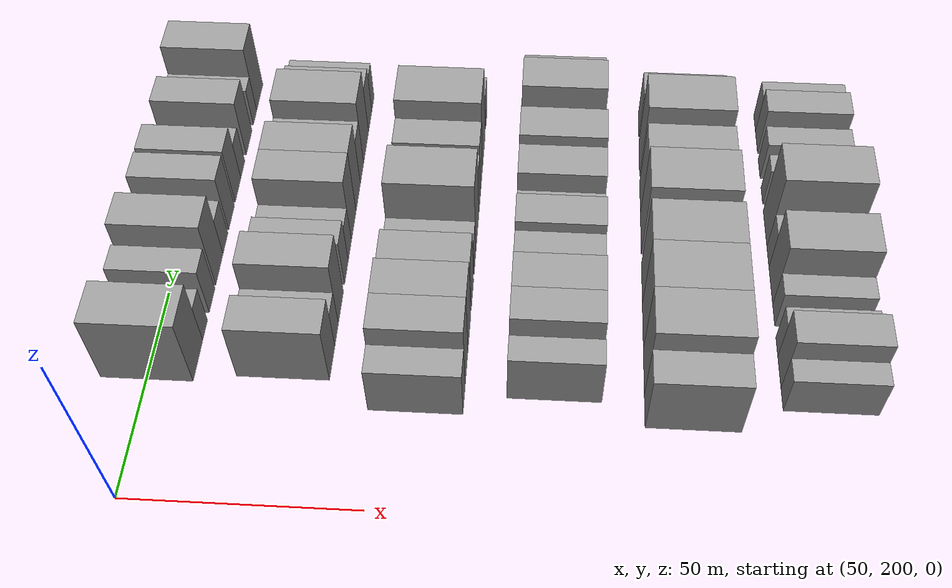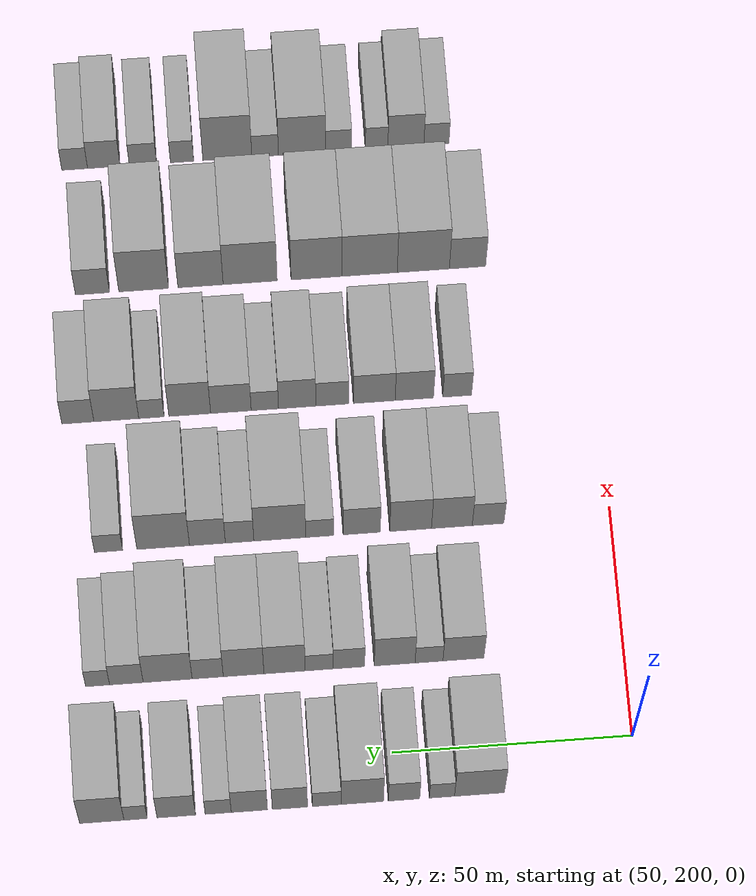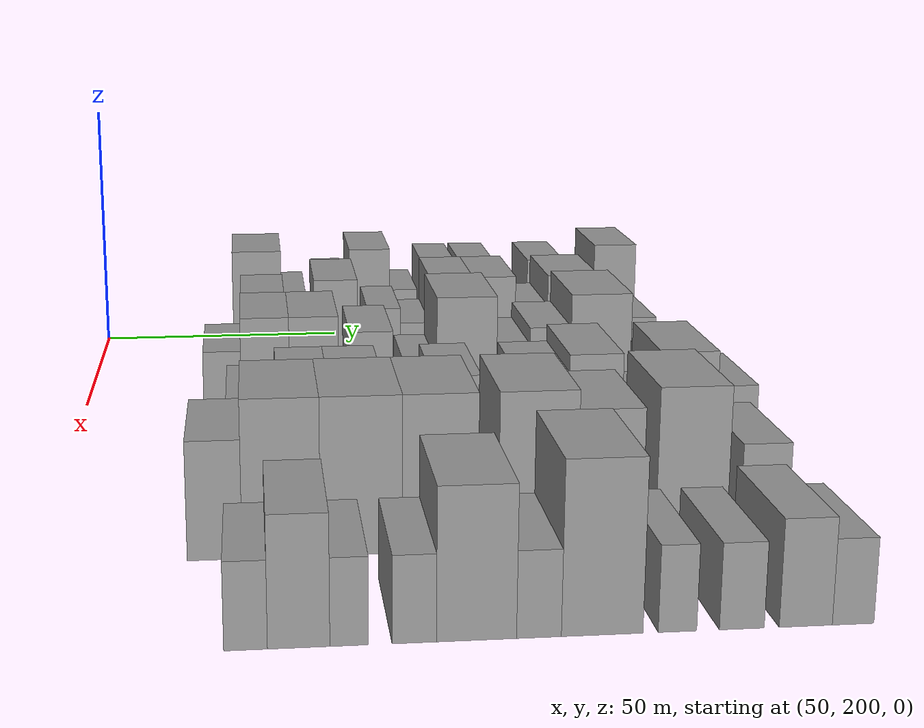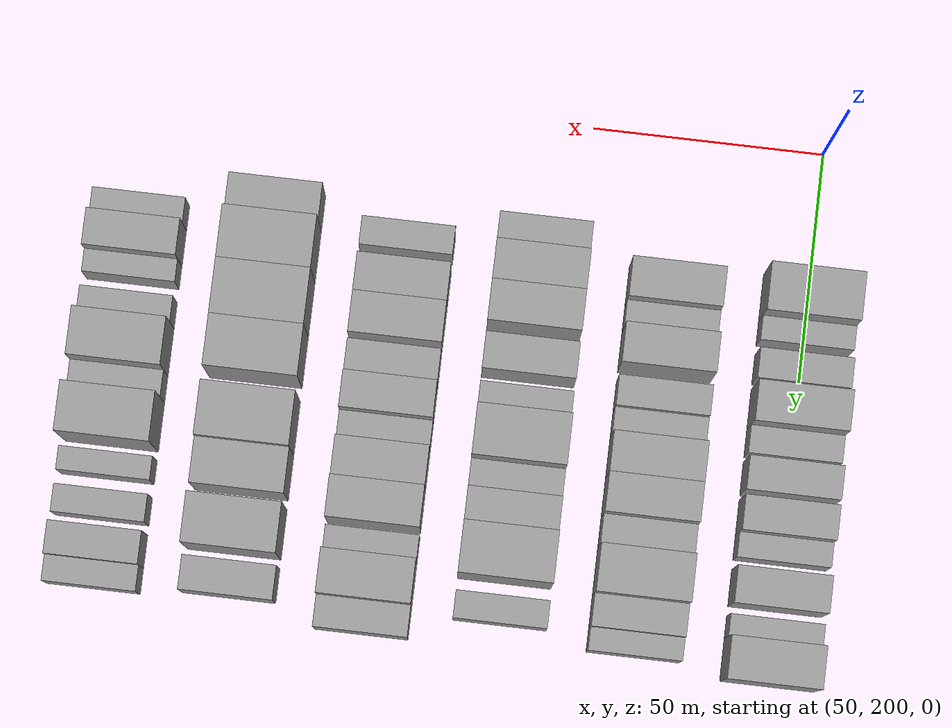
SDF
<sdf version="1.6">
 <world name="default">
  <model name="building_80">
   <static>1</static>
   <pose>50.0000 232.7814 0 0.000000 0.000000 0.000000</pose>
   <link name="link">
    <pose>0 0 10.50 0 0 0</pose>
    <collision name="collision"><geometry><box><size>20.0000 10.3654 21.0000</size></box></geometry></collision>
    <visual name="visual">
     <cast_shadows>0</cast_shadows>
     <geometry><box><size>20.0000 10.3654 21.0000</size></box></geometry>
     <material>
      <script>
       <uri>model://grey_wall/materials/scripts</uri>
       <uri>model://grey_wall/materials/textures</uri>
       <name>vrc/grey_wall</name>
      </script>
     </material>
    </visual>
   </link>
  </model>
  <model name="building_81">
   <static>1</static>
   <pose>50.0000 240.5755 0 0.000000 0.000000 0.000000</pose>
   <link name="link">
    <pose>0 0 6.00 0 0 0</pose>
    <collision name="collision"><geometry><box><size>20.0000 5.2228 12.0000</size></box></geometry></collision>
    <visual name="visual">
     <cast_shadows>0</cast_shadows>
     <geometry><box><size>20.0000 5.2228 12.0000</size></box></geometry>
     <material>
      <script>
       <uri>model://grey_wall/materials/scripts</uri>
       <uri>model://grey_wall/materials/textures</uri>
       <name>vrc/grey_wall</name>
      </script>
     </material>
    </visual>
   </link>
  </model>
  <model name="building_82">
   <static>1</static>
   <pose>50.0000 248.4468 0 0.000000 0.000000 0.000000</pose>
   <link name="link">
    <pose>0 0 7.50 0 0 0</pose>
    <collision name="collision"><geometry><box><size>20.0000 6.5197 15.0000</size></box></geometry></collision>
    <visual name="visual">
     <cast_shadows>0</cast_shadows>
     <geometry><box><size>20.0000 6.5197 15.0000</size></box></geometry>
     <material>
      <script>
       <uri>model://grey_wall/materials/scripts</uri>
       <uri>model://grey_wall/materials/textures</uri>
       <name>vrc/grey_wall</name>
      </script>
     </material>
    </visual>
   </link>
  </model>
  <model name="building_83">
   <static>1</static>
   <pose>50.0000 257.0895 0 0.000000 0.000000 0.000000</pose>
   <link name="link">
    <pose>0 0 10.50 0 0 0</pose>
    <collision name="collision"><geometry><box><size>20.0000 8.7658 21.0000</size></box></geometry></collision>
    <visual name="visual">
     <cast_shadows>0</cast_shadows>
     <geometry><box><size>20.0000 8.7658 21.0000</size></box></geometry>
     <material>
      <script>
       <uri>model://grey_wall/materials/scripts</uri>
       <uri>model://grey_wall/materials/textures</uri>
       <name>vrc/grey_wall</name>
      </script>
     </material>
    </visual>
   </link>
  </model>
  <model name="building_84">
   <static>1</static>
   <pose>50.0000 264.4639 0 0.000000 0.000000 0.000000</pose>
   <link name="link">
    <pose>0 0 6.00 0 0 0</pose>
    <collision name="collision"><geometry><box><size>20.0000 5.9831 12.0000</size></box></geometry></collision>
    <visual name="visual">
     <cast_shadows>0</cast_shadows>
     <geometry><box><size>20.0000 5.9831 12.0000</size></box></geometry>
     <material>
      <script>
       <uri>model://grey_wall/materials/scripts</uri>
       <uri>model://grey_wall/materials/textures</uri>
       <name>vrc/grey_wall</name>
      </script>
     </material>
    </visual>
   </link>
  </model>
  <model name="building_85">
   <static>1</static>
   <pose>50.0000 272.1037 0 0.000000 0.000000 0.000000</pose>
   <link name="link">
    <pose>0 0 9.00 0 0 0</pose>
    <collision name="collision"><geometry><box><size>20.0000 7.2965 18.0000</size></box></geometry></collision>
    <visual name="visual">
     <cast_shadows>0</cast_shadows>
     <geometry><box><size>20.0000 7.2965 18.0000</size></box></geometry>
     <material>
      <script>
       <uri>model://grey_wall/materials/scripts</uri>
       <uri>model://grey_wall/materials/textures</uri>
       <name>vrc/grey_wall</name>
      </script>
     </material>
    </visual>
   </link>
  </model>
  <model name="building_86">
   <static>1</static>
   <pose>50.0000 280.5044 0 0.000000 0.000000 0.000000</pose>
   <link name="link">
    <pose>0 0 9.00 0 0 0</pose>
    <collision name="collision"><geometry><box><size>20.0000 7.5048 18.0000</size></box></geometry></collision>
    <visual name="visual">
     <cast_shadows>0</cast_shadows>
     <geometry><box><size>20.0000 7.5048 18.0000</size></box></geometry>
     <material>
      <script>
       <uri>model://grey_wall/materials/scripts</uri>
       <uri>model://grey_wall/materials/textures</uri>
       <name>vrc/grey_wall</name>
      </script>
     </material>
    </visual>
   </link>
  </model>
  <model name="building_87">
   <static>1</static>
   <pose>50.0000 286.9579 0 0.000000 0.000000 0.000000</pose>
   <link name="link">
    <pose>0 0 6.00 0 0 0</pose>
    <collision name="collision"><geometry><box><size>20.0000 5.4024 12.0000</size></box></geometry></collision>
    <visual name="visual">
     <cast_shadows>0</cast_shadows>
     <geometry><box><size>20.0000 5.4024 12.0000</size></box></geometry>
     <material>
      <script>
       <uri>model://grey_wall/materials/scripts</uri>
       <uri>model://grey_wall/materials/textures</uri>
       <name>vrc/grey_wall</name>
      </script>
     </material>
    </visual>
   </link>
  </model>
  <model name="building_88">
   <static>1</static>
   <pose>50.0000 295.6468 0 0.000000 0.000000 0.000000</pose>
   <link name="link">
    <pose>0 0 9.00 0 0 0</pose>
    <collision name="collision"><geometry><box><size>20.0000 7.9753 18.0000</size></box></geometry></collision>
    <visual name="visual">
     <cast_shadows>0</cast_shadows>
     <geometry><box><size>20.0000 7.9753 18.0000</size></box></geometry>
     <material>
      <script>
       <uri>model://grey_wall/materials/scripts</uri>
       <uri>model://grey_wall/materials/textures</uri>
       <name>vrc/grey_wall</name>
      </script>
     </material>
    </visual>
   </link>
  </model>
  <model name="building_89">
   <static>1</static>
   <pose>50.0000 304.0474 0 0.000000 0.000000 0.000000</pose>
   <link name="link">
    <pose>0 0 6.00 0 0 0</pose>
    <collision name="collision"><geometry><box><size>20.0000 4.8259 12.0000</size></box></geometry></collision>
    <visual name="visual">
     <cast_shadows>0</cast_shadows>
     <geometry><box><size>20.0000 4.8259 12.0000</size></box></geometry>
     <material>
      <script>
       <uri>model://grey_wall/materials/scripts</uri>
       <uri>model://grey_wall/materials/textures</uri>
       <name>vrc/grey_wall</name>
      </script>
     </material>
    </visual>
   </link>
  </model>
  <model name="building_90">
   <static>1</static>
   <pose>50.0000 311.0550 0 0.000000 0.000000 0.000000</pose>
   <link name="link">
    <pose>0 0 10.50 0 0 0</pose>
    <collision name="collision"><geometry><box><size>20.0000 9.1895 21.0000</size></box></geometry></collision>
    <visual name="visual">
     <cast_shadows>0</cast_shadows>
     <geometry><box><size>20.0000 9.1895 21.0000</size></box></geometry>
     <material>
      <script>
       <uri>model://grey_wall/materials/scripts</uri>
       <uri>model://grey_wall/materials/textures</uri>
       <name>vrc/grey_wall</name>
      </script>
     </material>
    </visual>
   </link>
  </model>
  <model name="building_197">
   <static>1</static>
   <pose>79.0000 233.6876 0 0.000000 0.000000 0.000000</pose>
   <link name="link">
    <pose>0 0 9.00 0 0 0</pose>
    <collision name="collision"><geometry><box><size>20.0000 8.5938 18.0000</size></box></geometry></collision>
    <visual name="visual">
     <cast_shadows>0</cast_shadows>
     <geometry><box><size>20.0000 8.5938 18.0000</size></box></geometry>
     <material>
      <script>
       <uri>model://grey_wall/materials/scripts</uri>
       <uri>model://grey_wall/materials/textures</uri>
       <name>vrc/grey_wall</name>
      </script>
     </material>
    </visual>
   </link>
  </model>
  <model name="building_198">
   <static>1</static>
   <pose>79.0000 240.9029 0 0.000000 0.000000 0.000000</pose>
   <link name="link">
    <pose>0 0 6.00 0 0 0</pose>
    <collision name="collision"><geometry><box><size>20.0000 5.8368 12.0000</size></box></geometry></collision>
    <visual name="visual">
     <cast_shadows>0</cast_shadows>
     <geometry><box><size>20.0000 5.8368 12.0000</size></box></geometry>
     <material>
      <script>
       <uri>model://grey_wall/materials/scripts</uri>
       <uri>model://grey_wall/materials/textures</uri>
       <name>vrc/grey_wall</name>
      </script>
     </material>
    </visual>
   </link>
  </model>
  <model name="building_199">
   <static>1</static>
   <pose>79.0000 248.1060 0 0.000000 0.000000 0.000000</pose>
   <link name="link">
    <pose>0 0 10.50 0 0 0</pose>
    <collision name="collision"><geometry><box><size>20.0000 8.5694 21.0000</size></box></geometry></collision>
    <visual name="visual">
     <cast_shadows>0</cast_shadows>
     <geometry><box><size>20.0000 8.5694 21.0000</size></box></geometry>
     <material>
      <script>
       <uri>model://grey_wall/materials/scripts</uri>
       <uri>model://grey_wall/materials/textures</uri>
       <name>vrc/grey_wall</name>
      </script>
     </material>
    </visual>
   </link>
  </model>
  <model name="building_200">
   <static>1</static>
   <pose>79.0000 257.6825 0 0.000000 0.000000 0.000000</pose>
   <link name="link">
    <pose>0 0 7.50 0 0 0</pose>
    <collision name="collision"><geometry><box><size>20.0000 6.5837 15.0000</size></box></geometry></collision>
    <visual name="visual">
     <cast_shadows>0</cast_shadows>
     <geometry><box><size>20.0000 6.5837 15.0000</size></box></geometry>
     <material>
      <script>
       <uri>model://grey_wall/materials/scripts</uri>
       <uri>model://grey_wall/materials/textures</uri>
       <name>vrc/grey_wall</name>
      </script>
     </material>
    </visual>
   </link>
  </model>
  <model name="building_201">
   <static>1</static>
   <pose>79.0000 263.9155 0 0.000000 0.000000 0.000000</pose>
   <link name="link">
    <pose>0 0 6.00 0 0 0</pose>
    <collision name="collision"><geometry><box><size>20.0000 5.8823 12.0000</size></box></geometry></collision>
    <visual name="visual">
     <cast_shadows>0</cast_shadows>
     <geometry><box><size>20.0000 5.8823 12.0000</size></box></geometry>
     <material>
      <script>
       <uri>model://grey_wall/materials/scripts</uri>
       <uri>model://grey_wall/materials/textures</uri>
       <name>vrc/grey_wall</name>
      </script>
     </material>
    </visual>
   </link>
  </model>
  <model name="building_202">
   <static>1</static>
   <pose>79.0000 271.1806 0 0.000000 0.000000 0.000000</pose>
   <link name="link">
    <pose>0 0 10.50 0 0 0</pose>
    <collision name="collision"><geometry><box><size>20.0000 8.6479 21.0000</size></box></geometry></collision>
    <visual name="visual">
     <cast_shadows>0</cast_shadows>
     <geometry><box><size>20.0000 8.6479 21.0000</size></box></geometry>
     <material>
      <script>
       <uri>model://grey_wall/materials/scripts</uri>
       <uri>model://grey_wall/materials/textures</uri>
       <name>vrc/grey_wall</name>
      </script>
     </material>
    </visual>
   </link>
  </model>
  <model name="building_203">
   <static>1</static>
   <pose>79.0000 279.7601 0 0.000000 0.000000 0.000000</pose>
   <link name="link">
    <pose>0 0 10.50 0 0 0</pose>
    <collision name="collision"><geometry><box><size>20.0000 8.5110 21.0000</size></box></geometry></collision>
    <visual name="visual">
     <cast_shadows>0</cast_shadows>
     <geometry><box><size>20.0000 8.5110 21.0000</size></box></geometry>
     <material>
      <script>
       <uri>model://grey_wall/materials/scripts</uri>
       <uri>model://grey_wall/materials/textures</uri>
       <name>vrc/grey_wall</name>
      </script>
     </material>
    </visual>
   </link>
  </model>
  <model name="building_204">
   <static>1</static>
   <pose>79.0000 287.2732 0 0.000000 0.000000 0.000000</pose>
   <link name="link">
    <pose>0 0 7.50 0 0 0</pose>
    <collision name="collision"><geometry><box><size>20.0000 6.5151 15.0000</size></box></geometry></collision>
    <visual name="visual">
     <cast_shadows>0</cast_shadows>
     <geometry><box><size>20.0000 6.5151 15.0000</size></box></geometry>
     <material>
      <script>
       <uri>model://grey_wall/materials/scripts</uri>
       <uri>model://grey_wall/materials/textures</uri>
       <name>vrc/grey_wall</name>
      </script>
     </material>
    </visual>
   </link>
  </model>
  <model name="building_205">
   <static>1</static>
   <pose>79.0000 295.6540 0 0.000000 0.000000 0.000000</pose>
   <link name="link">
    <pose>0 0 10.50 0 0 0</pose>
    <collision name="collision"><geometry><box><size>20.0000 10.2466 21.0000</size></box></geometry></collision>
    <visual name="visual">
     <cast_shadows>0</cast_shadows>
     <geometry><box><size>20.0000 10.2466 21.0000</size></box></geometry>
     <material>
      <script>
       <uri>model://grey_wall/materials/scripts</uri>
       <uri>model://grey_wall/materials/textures</uri>
       <name>vrc/grey_wall</name>
      </script>
     </material>
    </visual>
   </link>
  </model>
  <model name="building_206">
   <static>1</static>
   <pose>79.0000 304.2929 0 0.000000 0.000000 0.000000</pose>
   <link name="link">
    <pose>0 0 7.50 0 0 0</pose>
    <collision name="collision"><geometry><box><size>20.0000 7.0312 15.0000</size></box></geometry></collision>
    <visual name="visual">
     <cast_shadows>0</cast_shadows>
     <geometry><box><size>20.0000 7.0312 15.0000</size></box></geometry>
     <material>
      <script>
       <uri>model://grey_wall/materials/scripts</uri>
       <uri>model://grey_wall/materials/textures</uri>
       <name>vrc/grey_wall</name>
      </script>
     </material>
    </visual>
   </link>
  </model>
  <model name="building_207">
   <static>1</static>
   <pose>79.0000 310.3057 0 0.000000 0.000000 0.000000</pose>
   <link name="link">
    <pose>0 0 6.00 0 0 0</pose>
    <collision name="collision"><geometry><box><size>20.0000 4.9945 12.0000</size></box></geometry></collision>
    <visual name="visual">
     <cast_shadows>0</cast_shadows>
     <geometry><box><size>20.0000 4.9945 12.0000</size></box></geometry>
     <material>
      <script>
       <uri>model://grey_wall/materials/scripts</uri>
       <uri>model://grey_wall/materials/textures</uri>
       <name>vrc/grey_wall</name>
      </script>
     </material>
    </visual>
   </link>
  </model>
  <model name="building_307">
   <static>1</static>
   <pose>108.0000 226.0307 0 0.000000 0.000000 0.000000</pose>
   <link name="link">
    <pose>0 0 7.50 0 0 0</pose>
    <collision name="collision"><geometry><box><size>20.0000 6.7109 15.0000</size></box></geometry></collision>
    <visual name="visual">
     <cast_shadows>0</cast_shadows>
     <geometry><box><size>20.0000 6.7109 15.0000</size></box></geometry>
     <material>
      <script>
       <uri>model://grey_wall/materials/scripts</uri>
       <uri>model://grey_wall/materials/textures</uri>
       <name>vrc/grey_wall</name>
      </script>
     </material>
    </visual>
   </link>
  </model>
  <model name="building_308">
   <static>1</static>
   <pose>108.0000 233.7107 0 0.000000 0.000000 0.000000</pose>
   <link name="link">
    <pose>0 0 10.50 0 0 0</pose>
    <collision name="collision"><geometry><box><size>20.0000 8.6491 21.0000</size></box></geometry></collision>
    <visual name="visual">
     <cast_shadows>0</cast_shadows>
     <geometry><box><size>20.0000 8.6491 21.0000</size></box></geometry>
     <material>
      <script>
       <uri>model://grey_wall/materials/scripts</uri>
       <uri>model://grey_wall/materials/textures</uri>
       <name>vrc/grey_wall</name>
      </script>
     </material>
    </visual>
   </link>
  </model>
  <model name="building_309">
   <static>1</static>
   <pose>108.0000 242.4573 0 0.000000 0.000000 0.000000</pose>
   <link name="link">
    <pose>0 0 10.50 0 0 0</pose>
    <collision name="collision"><geometry><box><size>20.0000 8.8440 21.0000</size></box></geometry></collision>
    <visual name="visual">
     <cast_shadows>0</cast_shadows>
     <geometry><box><size>20.0000 8.8440 21.0000</size></box></geometry>
     <material>
      <script>
       <uri>model://grey_wall/materials/scripts</uri>
       <uri>model://grey_wall/materials/textures</uri>
       <name>vrc/grey_wall</name>
      </script>
     </material>
    </visual>
   </link>
  </model>
  <model name="building_310">
   <static>1</static>
   <pose>108.0000 252.8198 0 0.000000 0.000000 0.000000</pose>
   <link name="link">
    <pose>0 0 9.00 0 0 0</pose>
    <collision name="collision"><geometry><box><size>20.0000 7.8811 18.0000</size></box></geometry></collision>
    <visual name="visual">
     <cast_shadows>0</cast_shadows>
     <geometry><box><size>20.0000 7.8811 18.0000</size></box></geometry>
     <material>
      <script>
       <uri>model://grey_wall/materials/scripts</uri>
       <uri>model://grey_wall/materials/textures</uri>
       <name>vrc/grey_wall</name>
      </script>
     </material>
    </visual>
   </link>
  </model>
  <model name="building_311">
   <static>1</static>
   <pose>108.0000 261.7179 0 0.000000 0.000000 0.000000</pose>
   <link name="link">
    <pose>0 0 6.00 0 0 0</pose>
    <collision name="collision"><geometry><box><size>20.0000 5.9150 12.0000</size></box></geometry></collision>
    <visual name="visual">
     <cast_shadows>0</cast_shadows>
     <geometry><box><size>20.0000 5.9150 12.0000</size></box></geometry>
     <material>
      <script>
       <uri>model://grey_wall/materials/scripts</uri>
       <uri>model://grey_wall/materials/textures</uri>
       <name>vrc/grey_wall</name>
      </script>
     </material>
    </visual>
   </link>
  </model>
  <model name="building_312">
   <static>1</static>
   <pose>108.0000 270.1622 0 0.000000 0.000000 0.000000</pose>
   <link name="link">
    <pose>0 0 12.00 0 0 0</pose>
    <collision name="collision"><geometry><box><size>20.0000 10.9737 24.0000</size></box></geometry></collision>
    <visual name="visual">
     <cast_shadows>0</cast_shadows>
     <geometry><box><size>20.0000 10.9737 24.0000</size></box></geometry>
     <material>
      <script>
       <uri>model://grey_wall/materials/scripts</uri>
       <uri>model://grey_wall/materials/textures</uri>
       <name>vrc/grey_wall</name>
      </script>
     </material>
    </visual>
   </link>
  </model>
  <model name="building_313">
   <static>1</static>
   <pose>108.0000 278.6652 0 0.000000 0.000000 0.000000</pose>
   <link name="link">
    <pose>0 0 7.50 0 0 0</pose>
    <collision name="collision"><geometry><box><size>20.0000 6.0323 15.0000</size></box></geometry></collision>
    <visual name="visual">
     <cast_shadows>0</cast_shadows>
     <geometry><box><size>20.0000 6.0323 15.0000</size></box></geometry>
     <material>
      <script>
       <uri>model://grey_wall/materials/scripts</uri>
       <uri>model://grey_wall/materials/textures</uri>
       <name>vrc/grey_wall</name>
      </script>
     </material>
    </visual>
   </link>
  </model>
  <model name="building_314">
   <static>1</static>
   <pose>108.0000 285.4722 0 0.000000 0.000000 0.000000</pose>
   <link name="link">
    <pose>0 0 9.00 0 0 0</pose>
    <collision name="collision"><geometry><box><size>20.0000 7.5818 18.0000</size></box></geometry></collision>
    <visual name="visual">
     <cast_shadows>0</cast_shadows>
     <geometry><box><size>20.0000 7.5818 18.0000</size></box></geometry>
     <material>
      <script>
       <uri>model://grey_wall/materials/scripts</uri>
       <uri>model://grey_wall/materials/textures</uri>
       <name>vrc/grey_wall</name>
      </script>
     </material>
    </visual>
   </link>
  </model>
  <model name="building_315">
   <static>1</static>
   <pose>108.0000 294.8252 0 0.000000 0.000000 0.000000</pose>
   <link name="link">
    <pose>0 0 12.00 0 0 0</pose>
    <collision name="collision"><geometry><box><size>20.0000 11.1241 24.0000</size></box></geometry></collision>
    <visual name="visual">
     <cast_shadows>0</cast_shadows>
     <geometry><box><size>20.0000 11.1241 24.0000</size></box></geometry>
     <material>
      <script>
       <uri>model://grey_wall/materials/scripts</uri>
       <uri>model://grey_wall/materials/textures</uri>
       <name>vrc/grey_wall</name>
      </script>
     </material>
    </visual>
   </link>
  </model>
  <model name="building_316">
   <static>1</static>
   <pose>108.0000 306.3662 0 0.000000 0.000000 0.000000</pose>
   <link name="link">
    <pose>0 0 6.00 0 0 0</pose>
    <collision name="collision"><geometry><box><size>20.0000 5.9580 12.0000</size></box></geometry></collision>
    <visual name="visual">
     <cast_shadows>0</cast_shadows>
     <geometry><box><size>20.0000 5.9580 12.0000</size></box></geometry>
     <material>
      <script>
       <uri>model://grey_wall/materials/scripts</uri>
       <uri>model://grey_wall/materials/textures</uri>
       <name>vrc/grey_wall</name>
      </script>
     </material>
    </visual>
   </link>
  </model>
  <model name="building_417">
   <static>1</static>
   <pose>137.0000 230.1609 0 0.000000 0.000000 0.000000</pose>
   <link name="link">
    <pose>0 0 7.50 0 0 0</pose>
    <collision name="collision"><geometry><box><size>20.0000 6.1587 15.0000</size></box></geometry></collision>
    <visual name="visual">
     <cast_shadows>0</cast_shadows>
     <geometry><box><size>20.0000 6.1587 15.0000</size></box></geometry>
     <material>
      <script>
       <uri>model://grey_wall/materials/scripts</uri>
       <uri>model://grey_wall/materials/textures</uri>
       <name>vrc/grey_wall</name>
      </script>
     </material>
    </visual>
   </link>
  </model>
  <model name="building_418">
   <static>1</static>
   <pose>137.0000 239.3438 0 0.000000 0.000000 0.000000</pose>
   <link name="link">
    <pose>0 0 9.00 0 0 0</pose>
    <collision name="collision"><geometry><box><size>20.0000 8.2071 18.0000</size></box></geometry></collision>
    <visual name="visual">
     <cast_shadows>0</cast_shadows>
     <geometry><box><size>20.0000 8.2071 18.0000</size></box></geometry>
     <material>
      <script>
       <uri>model://grey_wall/materials/scripts</uri>
       <uri>model://grey_wall/materials/textures</uri>
       <name>vrc/grey_wall</name>
      </script>
     </material>
    </visual>
   </link>
  </model>
  <model name="building_419">
   <static>1</static>
   <pose>137.0000 247.9128 0 0.000000 0.000000 0.000000</pose>
   <link name="link">
    <pose>0 0 9.00 0 0 0</pose>
    <collision name="collision"><geometry><box><size>20.0000 8.9309 18.0000</size></box></geometry></collision>
    <visual name="visual">
     <cast_shadows>0</cast_shadows>
     <geometry><box><size>20.0000 8.9309 18.0000</size></box></geometry>
     <material>
      <script>
       <uri>model://grey_wall/materials/scripts</uri>
       <uri>model://grey_wall/materials/textures</uri>
       <name>vrc/grey_wall</name>
      </script>
     </material>
    </visual>
   </link>
  </model>
  <model name="building_420">
   <static>1</static>
   <pose>137.0000 256.8989 0 0.000000 0.000000 0.000000</pose>
   <link name="link">
    <pose>0 0 7.50 0 0 0</pose>
    <collision name="collision"><geometry><box><size>20.0000 7.0414 15.0000</size></box></geometry></collision>
    <visual name="visual">
     <cast_shadows>0</cast_shadows>
     <geometry><box><size>20.0000 7.0414 15.0000</size></box></geometry>
     <material>
      <script>
       <uri>model://grey_wall/materials/scripts</uri>
       <uri>model://grey_wall/materials/textures</uri>
       <name>vrc/grey_wall</name>
      </script>
     </material>
    </visual>
   </link>
  </model>
  <model name="building_421">
   <static>1</static>
   <pose>137.0000 264.4163 0 0.000000 0.000000 0.000000</pose>
   <link name="link">
    <pose>0 0 9.00 0 0 0</pose>
    <collision name="collision"><geometry><box><size>20.0000 7.9933 18.0000</size></box></geometry></collision>
    <visual name="visual">
     <cast_shadows>0</cast_shadows>
     <geometry><box><size>20.0000 7.9933 18.0000</size></box></geometry>
     <material>
      <script>
       <uri>model://grey_wall/materials/scripts</uri>
       <uri>model://grey_wall/materials/textures</uri>
       <name>vrc/grey_wall</name>
      </script>
     </material>
    </visual>
   </link>
  </model>
  <model name="building_422">
   <static>1</static>
   <pose>137.0000 271.3362 0 0.000000 0.000000 0.000000</pose>
   <link name="link">
    <pose>0 0 6.00 0 0 0</pose>
    <collision name="collision"><geometry><box><size>20.0000 5.8465 12.0000</size></box></geometry></collision>
    <visual name="visual">
     <cast_shadows>0</cast_shadows>
     <geometry><box><size>20.0000 5.8465 12.0000</size></box></geometry>
     <material>
      <script>
       <uri>model://grey_wall/materials/scripts</uri>
       <uri>model://grey_wall/materials/textures</uri>
       <name>vrc/grey_wall</name>
      </script>
     </material>
    </visual>
   </link>
  </model>
  <model name="building_423">
   <static>1</static>
   <pose>137.0000 278.5910 0 0.000000 0.000000 0.000000</pose>
   <link name="link">
    <pose>0 0 9.00 0 0 0</pose>
    <collision name="collision"><geometry><box><size>20.0000 8.6632 18.0000</size></box></geometry></collision>
    <visual name="visual">
     <cast_shadows>0</cast_shadows>
     <geometry><box><size>20.0000 8.6632 18.0000</size></box></geometry>
     <material>
      <script>
       <uri>model://grey_wall/materials/scripts</uri>
       <uri>model://grey_wall/materials/textures</uri>
       <name>vrc/grey_wall</name>
      </script>
     </material>
    </visual>
   </link>
  </model>
  <model name="building_424">
   <static>1</static>
   <pose>137.0000 287.3897 0 0.000000 0.000000 0.000000</pose>
   <link name="link">
    <pose>0 0 10.50 0 0 0</pose>
    <collision name="collision"><geometry><box><size>20.0000 8.9342 21.0000</size></box></geometry></collision>
    <visual name="visual">
     <cast_shadows>0</cast_shadows>
     <geometry><box><size>20.0000 8.9342 21.0000</size></box></geometry>
     <material>
      <script>
       <uri>model://grey_wall/materials/scripts</uri>
       <uri>model://grey_wall/materials/textures</uri>
       <name>vrc/grey_wall</name>
      </script>
     </material>
    </visual>
   </link>
  </model>
  <model name="building_425">
   <static>1</static>
   <pose>137.0000 295.5771 0 0.000000 0.000000 0.000000</pose>
   <link name="link">
    <pose>0 0 6.00 0 0 0</pose>
    <collision name="collision"><geometry><box><size>20.0000 5.4405 12.0000</size></box></geometry></collision>
    <visual name="visual">
     <cast_shadows>0</cast_shadows>
     <geometry><box><size>20.0000 5.4405 12.0000</size></box></geometry>
     <material>
      <script>
       <uri>model://grey_wall/materials/scripts</uri>
       <uri>model://grey_wall/materials/textures</uri>
       <name>vrc/grey_wall</name>
      </script>
     </material>
    </visual>
   </link>
  </model>
  <model name="building_426">
   <static>1</static>
   <pose>137.0000 303.0813 0 0.000000 0.000000 0.000000</pose>
   <link name="link">
    <pose>0 0 10.50 0 0 0</pose>
    <collision name="collision"><geometry><box><size>20.0000 9.5681 21.0000</size></box></geometry></collision>
    <visual name="visual">
     <cast_shadows>0</cast_shadows>
     <geometry><box><size>20.0000 9.5681 21.0000</size></box></geometry>
     <material>
      <script>
       <uri>model://grey_wall/materials/scripts</uri>
       <uri>model://grey_wall/materials/textures</uri>
       <name>vrc/grey_wall</name>
      </script>
     </material>
    </visual>
   </link>
  </model>
  <model name="building_427">
   <static>1</static>
   <pose>137.0000 311.2832 0 0.000000 0.000000 0.000000</pose>
   <link name="link">
    <pose>0 0 7.50 0 0 0</pose>
    <collision name="collision"><geometry><box><size>20.0000 6.8357 15.0000</size></box></geometry></collision>
    <visual name="visual">
     <cast_shadows>0</cast_shadows>
     <geometry><box><size>20.0000 6.8357 15.0000</size></box></geometry>
     <material>
      <script>
       <uri>model://grey_wall/materials/scripts</uri>
       <uri>model://grey_wall/materials/textures</uri>
       <name>vrc/grey_wall</name>
      </script>
     </material>
    </visual>
   </link>
  </model>
  <model name="building_526">
   <static>1</static>
   <pose>166.0000 225.5147 0 0.000000 0.000000 0.000000</pose>
   <link name="link">
    <pose>0 0 9.00 0 0 0</pose>
    <collision name="collision"><geometry><box><size>20.0000 7.8492 18.0000</size></box></geometry></collision>
    <visual name="visual">
     <cast_shadows>0</cast_shadows>
     <geometry><box><size>20.0000 7.8492 18.0000</size></box></geometry>
     <material>
      <script>
       <uri>model://grey_wall/materials/scripts</uri>
       <uri>model://grey_wall/materials/textures</uri>
       <name>vrc/grey_wall</name>
      </script>
     </material>
    </visual>
   </link>
  </model>
  <model name="building_527">
   <static>1</static>
   <pose>166.0000 235.0789 0 0.000000 0.000000 0.000000</pose>
   <link name="link">
    <pose>0 0 12.00 0 0 0</pose>
    <collision name="collision"><geometry><box><size>20.0000 11.2792 24.0000</size></box></geometry></collision>
    <visual name="visual">
     <cast_shadows>0</cast_shadows>
     <geometry><box><size>20.0000 11.2792 24.0000</size></box></geometry>
     <material>
      <script>
       <uri>model://grey_wall/materials/scripts</uri>
       <uri>model://grey_wall/materials/textures</uri>
       <name>vrc/grey_wall</name>
      </script>
     </material>
    </visual>
   </link>
  </model>
  <model name="building_528">
   <static>1</static>
   <pose>166.0000 246.6849 0 0.000000 0.000000 0.000000</pose>
   <link name="link">
    <pose>0 0 12.00 0 0 0</pose>
    <collision name="collision"><geometry><box><size>20.0000 11.9328 24.0000</size></box></geometry></collision>
    <visual name="visual">
     <cast_shadows>0</cast_shadows>
     <geometry><box><size>20.0000 11.9328 24.0000</size></box></geometry>
     <material>
      <script>
       <uri>model://grey_wall/materials/scripts</uri>
       <uri>model://grey_wall/materials/textures</uri>
       <name>vrc/grey_wall</name>
      </script>
     </material>
    </visual>
   </link>
  </model>
  <model name="building_529">
   <static>1</static>
   <pose>166.0000 258.1666 0 0.000000 0.000000 0.000000</pose>
   <link name="link">
    <pose>0 0 12.00 0 0 0</pose>
    <collision name="collision"><geometry><box><size>20.0000 11.0305 24.0000</size></box></geometry></collision>
    <visual name="visual">
     <cast_shadows>0</cast_shadows>
     <geometry><box><size>20.0000 11.0305 24.0000</size></box></geometry>
     <material>
      <script>
       <uri>model://grey_wall/materials/scripts</uri>
       <uri>model://grey_wall/materials/textures</uri>
       <name>vrc/grey_wall</name>
      </script>
     </material>
    </visual>
   </link>
  </model>
  <model name="building_530">
   <static>1</static>
   <pose>166.0000 272.5171 0 0.000000 0.000000 0.000000</pose>
   <link name="link">
    <pose>0 0 12.00 0 0 0</pose>
    <collision name="collision"><geometry><box><size>20.0000 11.6705 24.0000</size></box></geometry></collision>
    <visual name="visual">
     <cast_shadows>0</cast_shadows>
     <geometry><box><size>20.0000 11.6705 24.0000</size></box></geometry>
     <material>
      <script>
       <uri>model://grey_wall/materials/scripts</uri>
       <uri>model://grey_wall/materials/textures</uri>
       <name>vrc/grey_wall</name>
      </script>
     </material>
    </visual>
   </link>
  </model>
  <model name="building_531">
   <static>1</static>
   <pose>166.0000 283.2381 0 0.000000 0.000000 0.000000</pose>
   <link name="link">
    <pose>0 0 10.50 0 0 0</pose>
    <collision name="collision"><geometry><box><size>20.0000 9.7715 21.0000</size></box></geometry></collision>
    <visual name="visual">
     <cast_shadows>0</cast_shadows>
     <geometry><box><size>20.0000 9.7715 21.0000</size></box></geometry>
     <material>
      <script>
       <uri>model://grey_wall/materials/scripts</uri>
       <uri>model://grey_wall/materials/textures</uri>
       <name>vrc/grey_wall</name>
      </script>
     </material>
    </visual>
   </link>
  </model>
  <model name="building_532">
   <static>1</static>
   <pose>166.0000 295.5004 0 0.000000 0.000000 0.000000</pose>
   <link name="link">
    <pose>0 0 12.00 0 0 0</pose>
    <collision name="collision"><geometry><box><size>20.0000 10.7530 24.0000</size></box></geometry></collision>
    <visual name="visual">
     <cast_shadows>0</cast_shadows>
     <geometry><box><size>20.0000 10.7530 24.0000</size></box></geometry>
     <material>
      <script>
       <uri>model://grey_wall/materials/scripts</uri>
       <uri>model://grey_wall/materials/textures</uri>
       <name>vrc/grey_wall</name>
      </script>
     </material>
    </visual>
   </link>
  </model>
  <model name="building_533">
   <static>1</static>
   <pose>166.0000 306.5633 0 0.000000 0.000000 0.000000</pose>
   <link name="link">
    <pose>0 0 7.50 0 0 0</pose>
    <collision name="collision"><geometry><box><size>20.0000 7.3729 15.0000</size></box></geometry></collision>
    <visual name="visual">
     <cast_shadows>0</cast_shadows>
     <geometry><box><size>20.0000 7.3729 15.0000</size></box></geometry>
     <material>
      <script>
       <uri>model://grey_wall/materials/scripts</uri>
       <uri>model://grey_wall/materials/textures</uri>
       <name>vrc/grey_wall</name>
      </script>
     </material>
    </visual>
   </link>
  </model>
  <model name="building_641">
   <static>1</static>
   <pose>195.0000 229.8774 0 0.000000 0.000000 0.000000</pose>
   <link name="link">
    <pose>0 0 6.00 0 0 0</pose>
    <collision name="collision"><geometry><box><size>20.0000 5.4848 12.0000</size></box></geometry></collision>
    <visual name="visual">
     <cast_shadows>0</cast_shadows>
     <geometry><box><size>20.0000 5.4848 12.0000</size></box></geometry>
     <material>
      <script>
       <uri>model://grey_wall/materials/scripts</uri>
       <uri>model://grey_wall/materials/textures</uri>
       <name>vrc/grey_wall</name>
      </script>
     </material>
    </visual>
   </link>
  </model>
  <model name="building_642">
   <static>1</static>
   <pose>195.0000 236.5576 0 0.000000 0.000000 0.000000</pose>
   <link name="link">
    <pose>0 0 9.00 0 0 0</pose>
    <collision name="collision"><geometry><box><size>20.0000 7.8756 18.0000</size></box></geometry></collision>
    <visual name="visual">
     <cast_shadows>0</cast_shadows>
     <geometry><box><size>20.0000 7.8756 18.0000</size></box></geometry>
     <material>
      <script>
       <uri>model://grey_wall/materials/scripts</uri>
       <uri>model://grey_wall/materials/textures</uri>
       <name>vrc/grey_wall</name>
      </script>
     </material>
    </visual>
   </link>
  </model>
  <model name="building_643">
   <static>1</static>
   <pose>195.0000 242.9504 0 0.000000 0.000000 0.000000</pose>
   <link name="link">
    <pose>0 0 6.00 0 0 0</pose>
    <collision name="collision"><geometry><box><size>20.0000 4.9100 12.0000</size></box></geometry></collision>
    <visual name="visual">
     <cast_shadows>0</cast_shadows>
     <geometry><box><size>20.0000 4.9100 12.0000</size></box></geometry>
     <material>
      <script>
       <uri>model://grey_wall/materials/scripts</uri>
       <uri>model://grey_wall/materials/textures</uri>
       <name>vrc/grey_wall</name>
      </script>
     </material>
    </visual>
   </link>
  </model>
  <model name="building_644">
   <static>1</static>
   <pose>195.0000 251.2343 0 0.000000 0.000000 0.000000</pose>
   <link name="link">
    <pose>0 0 6.00 0 0 0</pose>
    <collision name="collision"><geometry><box><size>20.0000 5.6577 12.0000</size></box></geometry></collision>
    <visual name="visual">
     <cast_shadows>0</cast_shadows>
     <geometry><box><size>20.0000 5.6577 12.0000</size></box></geometry>
     <material>
      <script>
       <uri>model://grey_wall/materials/scripts</uri>
       <uri>model://grey_wall/materials/textures</uri>
       <name>vrc/grey_wall</name>
      </script>
     </material>
    </visual>
   </link>
  </model>
  <model name="building_645">
   <static>1</static>
   <pose>195.0000 259.2258 0 0.000000 0.000000 0.000000</pose>
   <link name="link">
    <pose>0 0 10.50 0 0 0</pose>
    <collision name="collision"><geometry><box><size>20.0000 10.3252 21.0000</size></box></geometry></collision>
    <visual name="visual">
     <cast_shadows>0</cast_shadows>
     <geometry><box><size>20.0000 10.3252 21.0000</size></box></geometry>
     <material>
      <script>
       <uri>model://grey_wall/materials/scripts</uri>
       <uri>model://grey_wall/materials/textures</uri>
       <name>vrc/grey_wall</name>
      </script>
     </material>
    </visual>
   </link>
  </model>
  <model name="building_646">
   <static>1</static>
   <pose>195.0000 267.2956 0 0.000000 0.000000 0.000000</pose>
   <link name="link">
    <pose>0 0 6.00 0 0 0</pose>
    <collision name="collision"><geometry><box><size>20.0000 5.8143 12.0000</size></box></geometry></collision>
    <visual name="visual">
     <cast_shadows>0</cast_shadows>
     <geometry><box><size>20.0000 5.8143 12.0000</size></box></geometry>
     <material>
      <script>
       <uri>model://grey_wall/materials/scripts</uri>
       <uri>model://grey_wall/materials/textures</uri>
       <name>vrc/grey_wall</name>
      </script>
     </material>
    </visual>
   </link>
  </model>
  <model name="building_647">
   <static>1</static>
   <pose>195.0000 275.5400 0 0.000000 0.000000 0.000000</pose>
   <link name="link">
    <pose>0 0 12.00 0 0 0</pose>
    <collision name="collision"><geometry><box><size>20.0000 10.6745 24.0000</size></box></geometry></collision>
    <visual name="visual">
     <cast_shadows>0</cast_shadows>
     <geometry><box><size>20.0000 10.6745 24.0000</size></box></geometry>
     <material>
      <script>
       <uri>model://grey_wall/materials/scripts</uri>
       <uri>model://grey_wall/materials/textures</uri>
       <name>vrc/grey_wall</name>
      </script>
     </material>
    </visual>
   </link>
  </model>
  <model name="building_648">
   <static>1</static>
   <pose>195.0000 285.4186 0 0.000000 0.000000 0.000000</pose>
   <link name="link">
    <pose>0 0 6.00 0 0 0</pose>
    <collision name="collision"><geometry><box><size>20.0000 5.0828 12.0000</size></box></geometry></collision>
    <visual name="visual">
     <cast_shadows>0</cast_shadows>
     <geometry><box><size>20.0000 5.0828 12.0000</size></box></geometry>
     <material>
      <script>
       <uri>model://grey_wall/materials/scripts</uri>
       <uri>model://grey_wall/materials/textures</uri>
       <name>vrc/grey_wall</name>
      </script>
     </material>
    </visual>
   </link>
  </model>
  <model name="building_649">
   <static>1</static>
   <pose>195.0000 293.9437 0 0.000000 0.000000 0.000000</pose>
   <link name="link">
    <pose>0 0 6.00 0 0 0</pose>
    <collision name="collision"><geometry><box><size>20.0000 5.9673 12.0000</size></box></geometry></collision>
    <visual name="visual">
     <cast_shadows>0</cast_shadows>
     <geometry><box><size>20.0000 5.9673 12.0000</size></box></geometry>
     <material>
      <script>
       <uri>model://grey_wall/materials/scripts</uri>
       <uri>model://grey_wall/materials/textures</uri>
       <name>vrc/grey_wall</name>
      </script>
     </material>
    </visual>
   </link>
  </model>
  <model name="building_650">
   <static>1</static>
   <pose>195.0000 302.4809 0 0.000000 0.000000 0.000000</pose>
   <link name="link">
    <pose>0 0 7.50 0 0 0</pose>
    <collision name="collision"><geometry><box><size>20.0000 7.1069 15.0000</size></box></geometry></collision>
    <visual name="visual">
     <cast_shadows>0</cast_shadows>
     <geometry><box><size>20.0000 7.1069 15.0000</size></box></geometry>
     <material>
      <script>
       <uri>model://grey_wall/materials/scripts</uri>
       <uri>model://grey_wall/materials/textures</uri>
       <name>vrc/grey_wall</name>
      </script>
     </material>
    </visual>
   </link>
  </model>
  <model name="building_651">
   <static>1</static>
   <pose>195.0000 308.8378 0 0.000000 0.000000 0.000000</pose>
   <link name="link">
    <pose>0 0 6.00 0 0 0</pose>
    <collision name="collision"><geometry><box><size>20.0000 5.6070 12.0000</size></box></geometry></collision>
    <visual name="visual">
     <cast_shadows>0</cast_shadows>
     <geometry><box><size>20.0000 5.6070 12.0000</size></box></geometry>
     <material>
      <script>
       <uri>model://grey_wall/materials/scripts</uri>
       <uri>model://grey_wall/materials/textures</uri>
       <name>vrc/grey_wall</name>
      </script>
     </material>
    </visual>
   </link>
  </model>
 </world>
</sdf>
